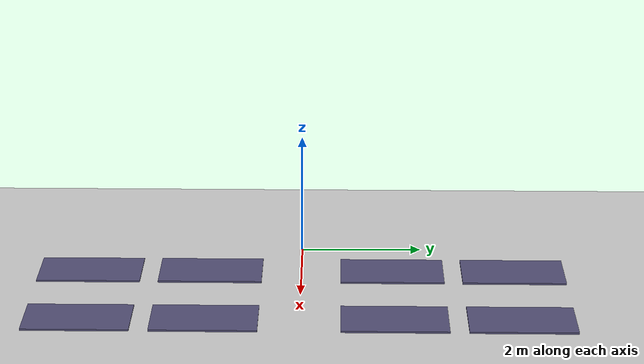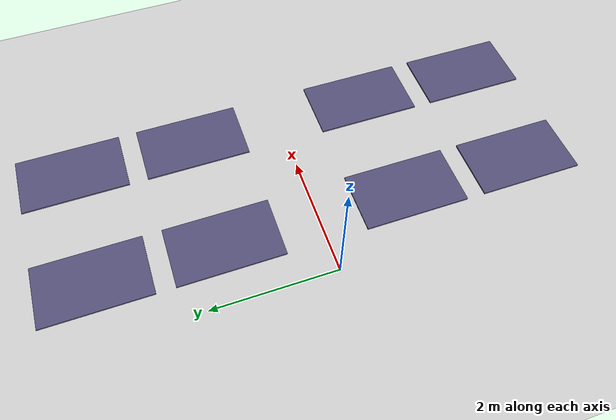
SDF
<sdf version="1.7">
 <world name="default">
  <light name="sun" type="directional">
   <pose>0 0 10 0 -0 0</pose>
   <diffuse>0.8 0.8 0.8 1</diffuse>
   <specular>0.2 0.2 0.2 1</specular>
   <attenuation>
    <range>1000</range>
    <constant>0.9</constant>
    <linear>0.01</linear>
    <quadratic>0.001</quadratic>
   </attenuation>
   <direction>-0.5 0.1 -0.9</direction>
   <spot><inner_angle>0</inner_angle><outer_angle>0</outer_angle><falloff>0</falloff></spot>
  </light>
  <model name="ground_plane">
   <static>1</static>
   <link name="link">
    <collision name="collision">
     <geometry><plane><normal>0 0 1</normal><size>100 100</size></plane></geometry>
     <surface>
      <contact><collide_bitmask>65535</collide_bitmask></contact>
      <friction><ode><mu>100</mu><mu2>50</mu2></ode></friction>
     </surface>
    </collision>
    <visual name="visual">
     <cast_shadows>0</cast_shadows>
     <geometry><plane><normal>0 0 1</normal><size>100 100</size></plane></geometry>
     <material>
      <script><uri>file://media/materials/scripts/gazebo.material</uri><name>Gazebo/Grey</name></script>
     </material>
    </visual>
   </link>
  </model>
  <gravity>0 0 -9.8</gravity>
  <magnetic_field>6e-06 2.3e-05 -4.2e-05</magnetic_field>
  <atmosphere type="adiabatic"/>
  <physics type="ode">
   <max_step_size>0.001</max_step_size>
   <real_time_factor>1</real_time_factor>
   <real_time_update_rate>1000</real_time_update_rate>
  </physics>
  <scene><ambient>0.4 0.4 0.4 1</ambient><background>0.7 0.7 0.7 1</background><shadows>1</shadows></scene>
  <spherical_coordinates>
   <surface_model>EARTH_WGS84</surface_model>
   <latitude_deg>0</latitude_deg>
   <longitude_deg>0</longitude_deg>
   <elevation>0</elevation>
   <heading_deg>0</heading_deg>
  </spherical_coordinates>
  <model name="solar_panel">
   <link name="link_1">
    <inertial>
     <mass>1</mass>
     <inertia>
      <ixx>0.166667</ixx>
      <ixy>0</ixy>
      <ixz>0</ixz>
      <iyy>0.166667</iyy>
      <iyz>0</iyz>
      <izz>0.166667</izz>
     </inertia>
    </inertial>
    <visual name="visual">
     <geometry><box><size>1 1.7 0.04</size></box></geometry>
     <material>
      <lighting>1</lighting>
      <script><uri>file://media/materials/scripts/gazebo.material</uri><name>Gazebo/Grey</name></script>
      <shader type="pixel"><normal_map>__default__</normal_map></shader>
      <ambient>0.031 0 0.173 1</ambient>
      <diffuse>0.322 0.31 0.463 1</diffuse>
      <specular>0 0 0 1</specular>
      <emissive>0.051 0.051 0.078 1</emissive>
     </material>
    </visual>
    <collision name="collision">
     <geometry><box><size>1 1.7 0.04</size></box></geometry>
     <surface>
      <friction>
       <ode><mu>1</mu><mu2>1</mu2><fdir1>0 0 0</fdir1><slip1>0</slip1><slip2>0</slip2></ode>
       <torsional>
        <coefficient>1</coefficient>
        <patch_radius>0</patch_radius>
        <surface_radius>0</surface_radius>
        <use_patch_radius>1</use_patch_radius>
        <ode><slip>0</slip></ode>
       </torsional>
      </friction>
      <bounce><restitution_coefficient>0</restitution_coefficient><threshold>1e+06</threshold></bounce>
      <contact>
       <collide_without_contact>0</collide_without_contact>
       <collide_without_contact_bitmask>1</collide_without_contact_bitmask>
       <collide_bitmask>1</collide_bitmask>
       <ode>
        <soft_cfm>0</soft_cfm>
        <soft_erp>0.2</soft_erp>
        <kp>1e+13</kp>
        <kd>1</kd>
        <max_vel>0.01</max_vel>
        <min_depth>0</min_depth>
       </ode>
       <bullet>
        <split_impulse>1</split_impulse>
        <split_impulse_penetration_threshold>-0.01</split_impulse_penetration_threshold>
        <soft_cfm>0</soft_cfm>
        <soft_erp>0.2</soft_erp>
        <kp>1e+13</kp>
        <kd>1</kd>
       </bullet>
      </contact>
     </surface>
    </collision>
   </link>
   <static>0</static>
   <pose>1 1.5 0 0 -0 0</pose>
  </model>
  <model name="solar_panel_0">
   <link name="link_1">
    <inertial>
     <mass>1</mass>
     <inertia>
      <ixx>0.166667</ixx>
      <ixy>0</ixy>
      <ixz>0</ixz>
      <iyy>0.166667</iyy>
      <iyz>0</iyz>
      <izz>0.166667</izz>
     </inertia>
    </inertial>
    <visual name="visual">
     <geometry><box><size>1 1.7 0.04</size></box></geometry>
     <material>
      <lighting>1</lighting>
      <script><uri>file://media/materials/scripts/gazebo.material</uri><name>Gazebo/Grey</name></script>
      <shader type="pixel"><normal_map>__default__</normal_map></shader>
      <ambient>0.031 0 0.173 1</ambient>
      <diffuse>0.322 0.31 0.463 1</diffuse>
      <specular>0 0 0 1</specular>
      <emissive>0.051 0.051 0.078 1</emissive>
     </material>
    </visual>
    <collision name="collision">
     <geometry><box><size>1 1.7 0.04</size></box></geometry>
     <surface>
      <friction>
       <ode><mu>1</mu><mu2>1</mu2><fdir1>0 0 0</fdir1><slip1>0</slip1><slip2>0</slip2></ode>
       <torsional>
        <coefficient>1</coefficient>
        <patch_radius>0</patch_radius>
        <surface_radius>0</surface_radius>
        <use_patch_radius>1</use_patch_radius>
        <ode><slip>0</slip></ode>
       </torsional>
      </friction>
      <bounce><restitution_coefficient>0</restitution_coefficient><threshold>1e+06</threshold></bounce>
      <contact>
       <collide_without_contact>0</collide_without_contact>
       <collide_without_contact_bitmask>1</collide_without_contact_bitmask>
       <collide_bitmask>1</collide_bitmask>
       <ode>
        <soft_cfm>0</soft_cfm>
        <soft_erp>0.2</soft_erp>
        <kp>1e+13</kp>
        <kd>1</kd>
        <max_vel>0.01</max_vel>
        <min_depth>0</min_depth>
       </ode>
       <bullet>
        <split_impulse>1</split_impulse>
        <split_impulse_penetration_threshold>-0.01</split_impulse_penetration_threshold>
        <soft_cfm>0</soft_cfm>
        <soft_erp>0.2</soft_erp>
        <kp>1e+13</kp>
        <kd>1</kd>
       </bullet>
      </contact>
     </surface>
    </collision>
   </link>
   <static>0</static>
   <pose>1 3.5 0 0 -0 0</pose>
  </model>
  <model name="solar_panel_1">
   <link name="link_1">
    <inertial>
     <mass>1</mass>
     <inertia>
      <ixx>0.166667</ixx>
      <ixy>0</ixy>
      <ixz>0</ixz>
      <iyy>0.166667</iyy>
      <iyz>0</iyz>
      <izz>0.166667</izz>
     </inertia>
    </inertial>
    <visual name="visual">
     <geometry><box><size>1 1.7 0.04</size></box></geometry>
     <material>
      <lighting>1</lighting>
      <script><uri>file://media/materials/scripts/gazebo.material</uri><name>Gazebo/Grey</name></script>
      <shader type="pixel"><normal_map>__default__</normal_map></shader>
      <ambient>0.031 0 0.173 1</ambient>
      <diffuse>0.322 0.31 0.463 1</diffuse>
      <specular>0 0 0 1</specular>
      <emissive>0.051 0.051 0.078 1</emissive>
     </material>
    </visual>
    <collision name="collision">
     <geometry><box><size>1 1.7 0.04</size></box></geometry>
     <surface>
      <friction>
       <ode><mu>1</mu><mu2>1</mu2><fdir1>0 0 0</fdir1><slip1>0</slip1><slip2>0</slip2></ode>
       <torsional>
        <coefficient>1</coefficient>
        <patch_radius>0</patch_radius>
        <surface_radius>0</surface_radius>
        <use_patch_radius>1</use_patch_radius>
        <ode><slip>0</slip></ode>
       </torsional>
      </friction>
      <bounce><restitution_coefficient>0</restitution_coefficient><threshold>1e+06</threshold></bounce>
      <contact>
       <collide_without_contact>0</collide_without_contact>
       <collide_without_contact_bitmask>1</collide_without_contact_bitmask>
       <collide_bitmask>1</collide_bitmask>
       <ode>
        <soft_cfm>0</soft_cfm>
        <soft_erp>0.2</soft_erp>
        <kp>1e+13</kp>
        <kd>1</kd>
        <max_vel>0.01</max_vel>
        <min_depth>0</min_depth>
       </ode>
       <bullet>
        <split_impulse>1</split_impulse>
        <split_impulse_penetration_threshold>-0.01</split_impulse_penetration_threshold>
        <soft_cfm>0</soft_cfm>
        <soft_erp>0.2</soft_erp>
        <kp>1e+13</kp>
        <kd>1</kd>
       </bullet>
      </contact>
     </surface>
    </collision>
   </link>
   <static>0</static>
   <pose>1 -1.5 0 0 -0 0</pose>
  </model>
  <model name="solar_panel_2">
   <link name="link_1">
    <inertial>
     <mass>1</mass>
     <inertia>
      <ixx>0.166667</ixx>
      <ixy>0</ixy>
      <ixz>0</ixz>
      <iyy>0.166667</iyy>
      <iyz>0</iyz>
      <izz>0.166667</izz>
     </inertia>
    </inertial>
    <visual name="visual">
     <geometry><box><size>1 1.7 0.04</size></box></geometry>
     <material>
      <lighting>1</lighting>
      <script><uri>file://media/materials/scripts/gazebo.material</uri><name>Gazebo/Grey</name></script>
      <shader type="pixel"><normal_map>__default__</normal_map></shader>
      <ambient>0.031 0 0.173 1</ambient>
      <diffuse>0.322 0.31 0.463 1</diffuse>
      <specular>0 0 0 1</specular>
      <emissive>0.051 0.051 0.078 1</emissive>
     </material>
    </visual>
    <collision name="collision">
     <geometry><box><size>1 1.7 0.04</size></box></geometry>
     <surface>
      <friction>
       <ode><mu>1</mu><mu2>1</mu2><fdir1>0 0 0</fdir1><slip1>0</slip1><slip2>0</slip2></ode>
       <torsional>
        <coefficient>1</coefficient>
        <patch_radius>0</patch_radius>
        <surface_radius>0</surface_radius>
        <use_patch_radius>1</use_patch_radius>
        <ode><slip>0</slip></ode>
       </torsional>
      </friction>
      <bounce><restitution_coefficient>0</restitution_coefficient><threshold>1e+06</threshold></bounce>
      <contact>
       <collide_without_contact>0</collide_without_contact>
       <collide_without_contact_bitmask>1</collide_without_contact_bitmask>
       <collide_bitmask>1</collide_bitmask>
       <ode>
        <soft_cfm>0</soft_cfm>
        <soft_erp>0.2</soft_erp>
        <kp>1e+13</kp>
        <kd>1</kd>
        <max_vel>0.01</max_vel>
        <min_depth>0</min_depth>
       </ode>
       <bullet>
        <split_impulse>1</split_impulse>
        <split_impulse_penetration_threshold>-0.01</split_impulse_penetration_threshold>
        <soft_cfm>0</soft_cfm>
        <soft_erp>0.2</soft_erp>
        <kp>1e+13</kp>
        <kd>1</kd>
       </bullet>
      </contact>
     </surface>
    </collision>
   </link>
   <static>0</static>
   <pose>1 -3.5 0 0 -0 0</pose>
  </model>
  <model name="solar_panel_3">
   <link name="link_1">
    <inertial>
     <mass>1</mass>
     <inertia>
      <ixx>0.166667</ixx>
      <ixy>0</ixy>
      <ixz>0</ixz>
      <iyy>0.166667</iyy>
      <iyz>0</iyz>
      <izz>0.166667</izz>
     </inertia>
    </inertial>
    <visual name="visual">
     <geometry><box><size>1 1.7 0.04</size></box></geometry>
     <material>
      <lighting>1</lighting>
      <script><uri>file://media/materials/scripts/gazebo.material</uri><name>Gazebo/Grey</name></script>
      <shader type="pixel"><normal_map>__default__</normal_map></shader>
      <ambient>0.031 0 0.173 1</ambient>
      <diffuse>0.322 0.31 0.463 1</diffuse>
      <specular>0 0 0 1</specular>
      <emissive>0.051 0.051 0.078 1</emissive>
     </material>
    </visual>
    <collision name="collision">
     <geometry><box><size>1 1.7 0.04</size></box></geometry>
     <surface>
      <friction>
       <ode><mu>1</mu><mu2>1</mu2><fdir1>0 0 0</fdir1><slip1>0</slip1><slip2>0</slip2></ode>
       <torsional>
        <coefficient>1</coefficient>
        <patch_radius>0</patch_radius>
        <surface_radius>0</surface_radius>
        <use_patch_radius>1</use_patch_radius>
        <ode><slip>0</slip></ode>
       </torsional>
      </friction>
      <bounce><restitution_coefficient>0</restitution_coefficient><threshold>1e+06</threshold></bounce>
      <contact>
       <collide_without_contact>0</collide_without_contact>
       <collide_without_contact_bitmask>1</collide_without_contact_bitmask>
       <collide_bitmask>1</collide_bitmask>
       <ode>
        <soft_cfm>0</soft_cfm>
        <soft_erp>0.2</soft_erp>
        <kp>1e+13</kp>
        <kd>1</kd>
        <max_vel>0.01</max_vel>
        <min_depth>0</min_depth>
       </ode>
       <bullet>
        <split_impulse>1</split_impulse>
        <split_impulse_penetration_threshold>-0.01</split_impulse_penetration_threshold>
        <soft_cfm>0</soft_cfm>
        <soft_erp>0.2</soft_erp>
        <kp>1e+13</kp>
        <kd>1</kd>
       </bullet>
      </contact>
     </surface>
    </collision>
   </link>
   <static>0</static>
   <pose>3 3.5 0 0 -0 0</pose>
  </model>
  <model name="solar_panel_4">
   <link name="link_1">
    <inertial>
     <mass>1</mass>
     <inertia>
      <ixx>0.166667</ixx>
      <ixy>0</ixy>
      <ixz>0</ixz>
      <iyy>0.166667</iyy>
      <iyz>0</iyz>
      <izz>0.166667</izz>
     </inertia>
    </inertial>
    <visual name="visual">
     <geometry><box><size>1 1.7 0.04</size></box></geometry>
     <material>
      <lighting>1</lighting>
      <script><uri>file://media/materials/scripts/gazebo.material</uri><name>Gazebo/Grey</name></script>
      <shader type="pixel"><normal_map>__default__</normal_map></shader>
      <ambient>0.031 0 0.173 1</ambient>
      <diffuse>0.322 0.31 0.463 1</diffuse>
      <specular>0 0 0 1</specular>
      <emissive>0.051 0.051 0.078 1</emissive>
     </material>
    </visual>
    <collision name="collision">
     <geometry><box><size>1 1.7 0.04</size></box></geometry>
     <surface>
      <friction>
       <ode><mu>1</mu><mu2>1</mu2><fdir1>0 0 0</fdir1><slip1>0</slip1><slip2>0</slip2></ode>
       <torsional>
        <coefficient>1</coefficient>
        <patch_radius>0</patch_radius>
        <surface_radius>0</surface_radius>
        <use_patch_radius>1</use_patch_radius>
        <ode><slip>0</slip></ode>
       </torsional>
      </friction>
      <bounce><restitution_coefficient>0</restitution_coefficient><threshold>1e+06</threshold></bounce>
      <contact>
       <collide_without_contact>0</collide_without_contact>
       <collide_without_contact_bitmask>1</collide_without_contact_bitmask>
       <collide_bitmask>1</collide_bitmask>
       <ode>
        <soft_cfm>0</soft_cfm>
        <soft_erp>0.2</soft_erp>
        <kp>1e+13</kp>
        <kd>1</kd>
        <max_vel>0.01</max_vel>
        <min_depth>0</min_depth>
       </ode>
       <bullet>
        <split_impulse>1</split_impulse>
        <split_impulse_penetration_threshold>-0.01</split_impulse_penetration_threshold>
        <soft_cfm>0</soft_cfm>
        <soft_erp>0.2</soft_erp>
        <kp>1e+13</kp>
        <kd>1</kd>
       </bullet>
      </contact>
     </surface>
    </collision>
   </link>
   <static>0</static>
   <pose>3 1.5 0 0 -0 0</pose>
  </model>
  <model name="solar_panel_5">
   <link name="link_1">
    <inertial>
     <mass>1</mass>
     <inertia>
      <ixx>0.166667</ixx>
      <ixy>0</ixy>
      <ixz>0</ixz>
      <iyy>0.166667</iyy>
      <iyz>0</iyz>
      <izz>0.166667</izz>
     </inertia>
    </inertial>
    <visual name="visual">
     <geometry><box><size>1 1.7 0.04</size></box></geometry>
     <material>
      <lighting>1</lighting>
      <script><uri>file://media/materials/scripts/gazebo.material</uri><name>Gazebo/Grey</name></script>
      <shader type="pixel"><normal_map>__default__</normal_map></shader>
      <ambient>0.031 0 0.173 1</ambient>
      <diffuse>0.322 0.31 0.463 1</diffuse>
      <specular>0 0 0 1</specular>
      <emissive>0.051 0.051 0.078 1</emissive>
     </material>
    </visual>
    <collision name="collision">
     <geometry><box><size>1 1.7 0.04</size></box></geometry>
     <surface>
      <friction>
       <ode><mu>1</mu><mu2>1</mu2><fdir1>0 0 0</fdir1><slip1>0</slip1><slip2>0</slip2></ode>
       <torsional>
        <coefficient>1</coefficient>
        <patch_radius>0</patch_radius>
        <surface_radius>0</surface_radius>
        <use_patch_radius>1</use_patch_radius>
        <ode><slip>0</slip></ode>
       </torsional>
      </friction>
      <bounce><restitution_coefficient>0</restitution_coefficient><threshold>1e+06</threshold></bounce>
      <contact>
       <collide_without_contact>0</collide_without_contact>
       <collide_without_contact_bitmask>1</collide_without_contact_bitmask>
       <collide_bitmask>1</collide_bitmask>
       <ode>
        <soft_cfm>0</soft_cfm>
        <soft_erp>0.2</soft_erp>
        <kp>1e+13</kp>
        <kd>1</kd>
        <max_vel>0.01</max_vel>
        <min_depth>0</min_depth>
       </ode>
       <bullet>
        <split_impulse>1</split_impulse>
        <split_impulse_penetration_threshold>-0.01</split_impulse_penetration_threshold>
        <soft_cfm>0</soft_cfm>
        <soft_erp>0.2</soft_erp>
        <kp>1e+13</kp>
        <kd>1</kd>
       </bullet>
      </contact>
     </surface>
    </collision>
   </link>
   <static>0</static>
   <pose>3 -1.5 0 0 -0 0</pose>
  </model>
  <model name="solar_panel_6">
   <link name="link_1">
    <inertial>
     <mass>1</mass>
     <inertia>
      <ixx>0.166667</ixx>
      <ixy>0</ixy>
      <ixz>0</ixz>
      <iyy>0.166667</iyy>
      <iyz>0</iyz>
      <izz>0.166667</izz>
     </inertia>
    </inertial>
    <visual name="visual">
     <geometry><box><size>1 1.7 0.04</size></box></geometry>
     <material>
      <lighting>1</lighting>
      <script><uri>file://media/materials/scripts/gazebo.material</uri><name>Gazebo/Grey</name></script>
      <shader type="pixel"><normal_map>__default__</normal_map></shader>
      <ambient>0.031 0 0.173 1</ambient>
      <diffuse>0.322 0.31 0.463 1</diffuse>
      <specular>0 0 0 1</specular>
      <emissive>0.051 0.051 0.078 1</emissive>
     </material>
    </visual>
    <collision name="collision">
     <geometry><box><size>1 1.7 0.04</size></box></geometry>
     <surface>
      <friction>
       <ode><mu>1</mu><mu2>1</mu2><fdir1>0 0 0</fdir1><slip1>0</slip1><slip2>0</slip2></ode>
       <torsional>
        <coefficient>1</coefficient>
        <patch_radius>0</patch_radius>
        <surface_radius>0</surface_radius>
        <use_patch_radius>1</use_patch_radius>
        <ode><slip>0</slip></ode>
       </torsional>
      </friction>
      <bounce><restitution_coefficient>0</restitution_coefficient><threshold>1e+06</threshold></bounce>
      <contact>
       <collide_without_contact>0</collide_without_contact>
       <collide_without_contact_bitmask>1</collide_without_contact_bitmask>
       <collide_bitmask>1</collide_bitmask>
       <ode>
        <soft_cfm>0</soft_cfm>
        <soft_erp>0.2</soft_erp>
        <kp>1e+13</kp>
        <kd>1</kd>
        <max_vel>0.01</max_vel>
        <min_depth>0</min_depth>
       </ode>
       <bullet>
        <split_impulse>1</split_impulse>
        <split_impulse_penetration_threshold>-0.01</split_impulse_penetration_threshold>
        <soft_cfm>0</soft_cfm>
        <soft_erp>0.2</soft_erp>
        <kp>1e+13</kp>
        <kd>1</kd>
       </bullet>
      </contact>
     </surface>
    </collision>
   </link>
   <static>0</static>
   <pose>3 -3.5 0 0 -0 0</pose>
  </model>
 </world>
</sdf>
